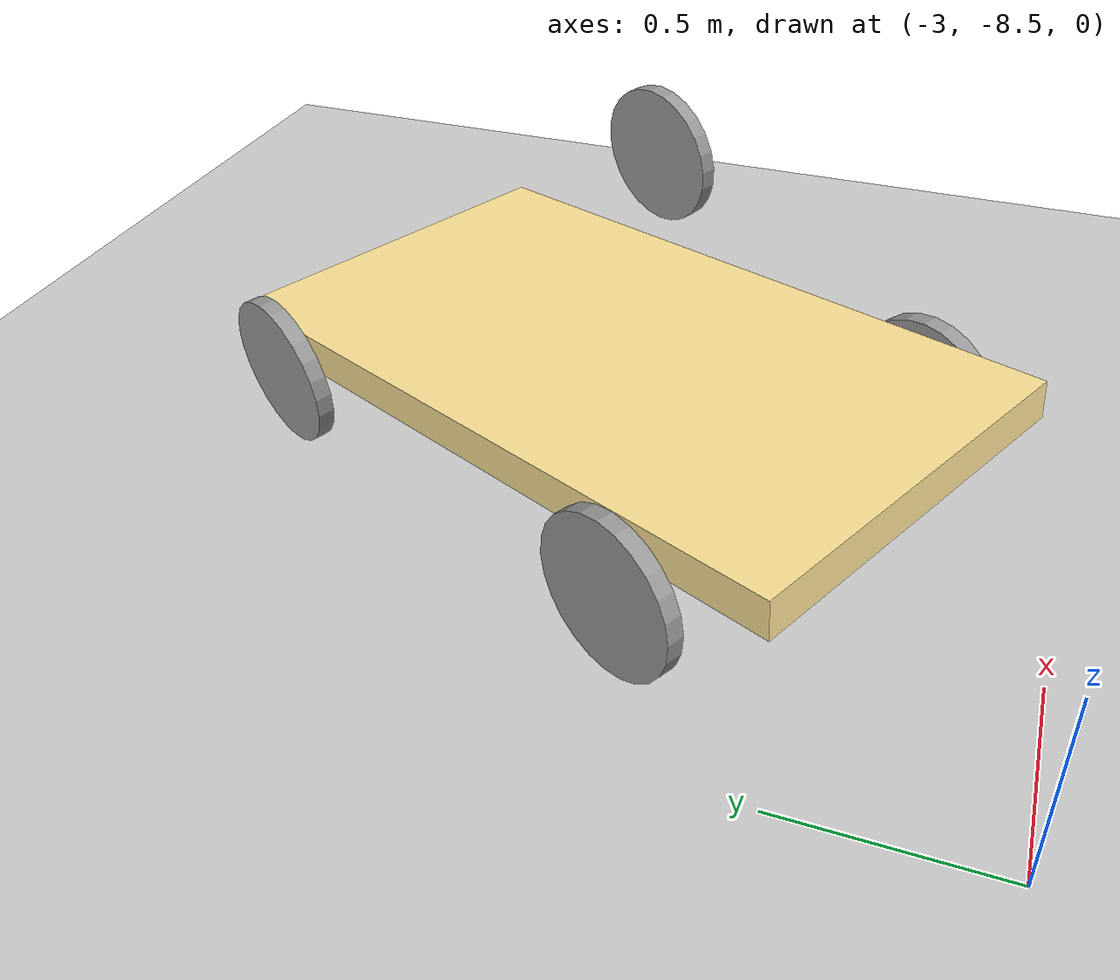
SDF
<sdf version="1.6">
 <world name="default">
  <model name="ground_plane">
   <static>1</static>
   <link name="link">
    <collision name="collision">
     <geometry><plane><normal>0 0 1</normal><size>100 100</size></plane></geometry>
     <surface><friction><ode><mu>100</mu><mu2>50</mu2></ode></friction></surface>
    </collision>
    <visual name="visual">
     <cast_shadows>0</cast_shadows>
     <geometry><plane><normal>0 0 1</normal><size>100 100</size></plane></geometry>
     <material>
      <script><uri>file://media/materials/scripts/gazebo.material</uri><name>Gazebo/Grey</name></script>
     </material>
    </visual>
   </link>
  </model>
  <model name="wheely">
   <link name="link_0">
    <pose>-0.050655 0.038805 -0.014544 1e-06 0.271798 0.057206</pose>
    <inertial>
     <mass>9.70976</mass>
     <inertia><ixx>0.817238</ixx><ixy>0</ixy><ixz>0</ixz><iyy>2.71066</iyy><iyz>0</iyz><izz>3.51172</izz></inertia>
    </inertial>
    <visual name="visual">
     <geometry><box><size>1.82757 1 0.1</size></box></geometry>
     <material>
      <lighting>1</lighting>
      <script><uri>file://media/materials/scripts/gazebo.material</uri><name>Gazebo/Grey</name></script>
      <ambient>1 0.9 0.6 1</ambient>
      <diffuse>1 0.9 0.6 1</diffuse>
      <specular>0.01 0.01 0.01 1</specular>
      <emissive>0 0 0 1</emissive>
      <shader type="vertex"><normal_map>__default__</normal_map></shader>
     </material>
    </visual>
    <collision name="collision">
     <geometry><box><size>1.82757 1 0.1</size></box></geometry>
     <surface>
      <friction>
       <ode><mu>1</mu><mu2>1</mu2><fdir1>0 0 0</fdir1><slip1>0</slip1><slip2>0</slip2></ode>
       <torsional>
        <coefficient>1</coefficient>
        <patch_radius>0</patch_radius>
        <surface_radius>0</surface_radius>
        <use_patch_radius>1</use_patch_radius>
        <ode><slip>0</slip></ode>
       </torsional>
      </friction>
      <bounce><restitution_coefficient>0</restitution_coefficient><threshold>1e+06</threshold></bounce>
      <contact>
       <collide_without_contact>0</collide_without_contact>
       <collide_without_contact_bitmask>1</collide_without_contact_bitmask>
       <collide_bitmask>1</collide_bitmask>
       <ode>
        <soft_cfm>0</soft_cfm>
        <soft_erp>0.2</soft_erp>
        <kp>1e+13</kp>
        <kd>1</kd>
        <max_vel>0.01</max_vel>
        <min_depth>0</min_depth>
       </ode>
       <bullet>
        <split_impulse>1</split_impulse>
        <split_impulse_penetration_threshold>-0.01</split_impulse_penetration_threshold>
        <soft_cfm>0</soft_cfm>
        <soft_erp>0.2</soft_erp>
        <kp>1e+13</kp>
        <kd>1</kd>
       </bullet>
      </contact>
     </surface>
    </collision>
   </link>
   <link name="link_1">
    <pose>-0.596107 -0.550019 -0 1.5707 -0 0</pose>
    <inertial>
     <mass>0.499601</mass>
     <inertia>
      <ixx>0.00509991</ixx>
      <ixy>0</ixy>
      <ixz>0</ixz>
      <iyy>0.00509991</iyy>
      <iyz>0</iyz>
      <izz>0.00999201</izz>
     </inertia>
    </inertial>
    <visual name="visual">
     <geometry><cylinder><radius>0.2</radius><length>0.049957</length></cylinder></geometry>
     <material>
      <lighting>1</lighting>
      <script><uri>file://media/materials/scripts/gazebo.material</uri><name>Gazebo/Grey</name></script>
      <ambient>0.5 0.5 0.5 1</ambient>
      <diffuse>0.5 0.5 0.5 1</diffuse>
      <specular>0.01 0.01 0.01 1</specular>
      <emissive>0 0 0 1</emissive>
      <shader type="vertex"><normal_map>__default__</normal_map></shader>
     </material>
    </visual>
    <collision name="collision">
     <geometry><cylinder><radius>0.2</radius><length>0.049957</length></cylinder></geometry>
     <surface>
      <friction>
       <ode><mu>1</mu><mu2>1</mu2><fdir1>0 0 0</fdir1><slip1>0</slip1><slip2>0</slip2></ode>
       <torsional>
        <coefficient>1</coefficient>
        <patch_radius>0</patch_radius>
        <surface_radius>0</surface_radius>
        <use_patch_radius>1</use_patch_radius>
        <ode><slip>0</slip></ode>
       </torsional>
      </friction>
      <bounce><restitution_coefficient>0</restitution_coefficient><threshold>1e+06</threshold></bounce>
      <contact>
       <collide_without_contact>0</collide_without_contact>
       <collide_without_contact_bitmask>1</collide_without_contact_bitmask>
       <collide_bitmask>1</collide_bitmask>
       <ode>
        <soft_cfm>0</soft_cfm>
        <soft_erp>0.2</soft_erp>
        <kp>1e+13</kp>
        <kd>1</kd>
        <max_vel>0.01</max_vel>
        <min_depth>0</min_depth>
       </ode>
       <bullet>
        <split_impulse>1</split_impulse>
        <split_impulse_penetration_threshold>-0.01</split_impulse_penetration_threshold>
        <soft_cfm>0</soft_cfm>
        <soft_erp>0.2</soft_erp>
        <kp>1e+13</kp>
        <kd>1</kd>
       </bullet>
      </contact>
     </surface>
    </collision>
   </link>
   <link name="link_1_clone">
    <pose>-0.61948 0.550019 0 1.5707 -0 0</pose>
    <inertial>
     <mass>0.43298</mass>
     <inertia>
      <ixx>0.00439744</ixx>
      <ixy>0</ixy>
      <ixz>0</ixz>
      <iyy>0.00439744</iyy>
      <iyz>0</iyz>
      <izz>0.00865959</izz>
     </inertia>
    </inertial>
    <visual name="visual">
     <geometry><cylinder><radius>0.2</radius><length>0.0432982</length></cylinder></geometry>
     <material>
      <lighting>1</lighting>
      <script><uri>file://media/materials/scripts/gazebo.material</uri><name>Gazebo/Grey</name></script>
      <ambient>0.5 0.5 0.5 1</ambient>
      <diffuse>0.5 0.5 0.5 1</diffuse>
      <specular>0.01 0.01 0.01 1</specular>
      <emissive>0 0 0 1</emissive>
      <shader type="vertex"><normal_map>__default__</normal_map></shader>
     </material>
    </visual>
    <collision name="collision">
     <geometry><cylinder><radius>0.2</radius><length>0.043298</length></cylinder></geometry>
     <surface>
      <friction>
       <ode><mu>1</mu><mu2>1</mu2><fdir1>0 0 0</fdir1><slip1>0</slip1><slip2>0</slip2></ode>
       <torsional>
        <coefficient>1</coefficient>
        <patch_radius>0</patch_radius>
        <surface_radius>0</surface_radius>
        <use_patch_radius>1</use_patch_radius>
        <ode><slip>0</slip></ode>
       </torsional>
      </friction>
      <bounce><restitution_coefficient>0</restitution_coefficient><threshold>1e+06</threshold></bounce>
      <contact>
       <collide_without_contact>0</collide_without_contact>
       <collide_without_contact_bitmask>1</collide_without_contact_bitmask>
       <collide_bitmask>1</collide_bitmask>
       <ode>
        <soft_cfm>0</soft_cfm>
        <soft_erp>0.2</soft_erp>
        <kp>1e+13</kp>
        <kd>1</kd>
        <max_vel>0.01</max_vel>
        <min_depth>0</min_depth>
       </ode>
       <bullet>
        <split_impulse>1</split_impulse>
        <split_impulse_penetration_threshold>-0.01</split_impulse_penetration_threshold>
        <soft_cfm>0</soft_cfm>
        <soft_erp>0.2</soft_erp>
        <kp>1e+13</kp>
        <kd>1</kd>
       </bullet>
      </contact>
     </surface>
    </collision>
   </link>
   <link name="link_1_clone_clone">
    <pose>0.460007 -0.573936 0.098437 1.5 -0 0</pose>
    <inertial>
     <mass>0.43298</mass>
     <inertia>
      <ixx>0.00439744</ixx>
      <ixy>0</ixy>
      <ixz>0</ixz>
      <iyy>0.00439744</iyy>
      <iyz>0</iyz>
      <izz>0.00865959</izz>
     </inertia>
    </inertial>
    <visual name="visual">
     <geometry><cylinder><radius>0.2</radius><length>0.0432982</length></cylinder></geometry>
     <material>
      <lighting>1</lighting>
      <script><uri>file://media/materials/scripts/gazebo.material</uri><name>Gazebo/Grey</name></script>
      <ambient>0.5 0.5 0.5 1</ambient>
      <diffuse>0.5 0.5 0.5 1</diffuse>
      <specular>0.01 0.01 0.01 1</specular>
      <emissive>0 0 0 1</emissive>
      <shader type="vertex"><normal_map>__default__</normal_map></shader>
     </material>
    </visual>
    <collision name="collision">
     <geometry><cylinder><radius>0.2</radius><length>0.043298</length></cylinder></geometry>
     <surface>
      <friction>
       <ode><mu>1</mu><mu2>1</mu2><fdir1>0 0 0</fdir1><slip1>0</slip1><slip2>0</slip2></ode>
       <torsional>
        <coefficient>1</coefficient>
        <patch_radius>0</patch_radius>
        <surface_radius>0</surface_radius>
        <use_patch_radius>1</use_patch_radius>
        <ode><slip>0</slip></ode>
       </torsional>
      </friction>
      <bounce><restitution_coefficient>0</restitution_coefficient><threshold>1e+06</threshold></bounce>
      <contact>
       <collide_without_contact>0</collide_without_contact>
       <collide_without_contact_bitmask>1</collide_without_contact_bitmask>
       <collide_bitmask>1</collide_bitmask>
       <ode>
        <soft_cfm>0</soft_cfm>
        <soft_erp>0.2</soft_erp>
        <kp>1e+13</kp>
        <kd>1</kd>
        <max_vel>0.01</max_vel>
        <min_depth>0</min_depth>
       </ode>
       <bullet>
        <split_impulse>1</split_impulse>
        <split_impulse_penetration_threshold>-0.01</split_impulse_penetration_threshold>
        <soft_cfm>0</soft_cfm>
        <soft_erp>0.2</soft_erp>
        <kp>1e+13</kp>
        <kd>1</kd>
       </bullet>
      </contact>
     </surface>
    </collision>
   </link>
   <link name="link_1_clone_clone_clone_0">
    <pose>0.552681 0.62579 -0.239322 1.5 -0 0</pose>
    <inertial>
     <mass>0.43298</mass>
     <inertia>
      <ixx>0.00439744</ixx>
      <ixy>0</ixy>
      <ixz>0</ixz>
      <iyy>0.00439744</iyy>
      <iyz>0</iyz>
      <izz>0.00865959</izz>
     </inertia>
    </inertial>
    <visual name="visual">
     <geometry><cylinder><radius>0.2</radius><length>0.0432982</length></cylinder></geometry>
     <material>
      <lighting>1</lighting>
      <script><uri>file://media/materials/scripts/gazebo.material</uri><name>Gazebo/Grey</name></script>
      <ambient>0.5 0.5 0.5 1</ambient>
      <diffuse>0.5 0.5 0.5 1</diffuse>
      <specular>0.01 0.01 0.01 1</specular>
      <emissive>0 0 0 1</emissive>
      <shader type="vertex"><normal_map>__default__</normal_map></shader>
     </material>
    </visual>
    <collision name="collision">
     <geometry><cylinder><radius>0.2</radius><length>0.043298</length></cylinder></geometry>
     <surface>
      <friction>
       <ode><mu>1</mu><mu2>1</mu2><fdir1>0 0 0</fdir1><slip1>0</slip1><slip2>0</slip2></ode>
       <torsional>
        <coefficient>1</coefficient>
        <patch_radius>0</patch_radius>
        <surface_radius>0</surface_radius>
        <use_patch_radius>1</use_patch_radius>
        <ode><slip>0</slip></ode>
       </torsional>
      </friction>
      <bounce><restitution_coefficient>0</restitution_coefficient><threshold>1e+06</threshold></bounce>
      <contact>
       <collide_without_contact>0</collide_without_contact>
       <collide_without_contact_bitmask>1</collide_without_contact_bitmask>
       <collide_bitmask>1</collide_bitmask>
       <ode>
        <soft_cfm>0</soft_cfm>
        <soft_erp>0.2</soft_erp>
        <kp>1e+13</kp>
        <kd>1</kd>
        <max_vel>0.01</max_vel>
        <min_depth>0</min_depth>
       </ode>
       <bullet>
        <split_impulse>1</split_impulse>
        <split_impulse_penetration_threshold>-0.01</split_impulse_penetration_threshold>
        <soft_cfm>0</soft_cfm>
        <soft_erp>0.2</soft_erp>
        <kp>1e+13</kp>
        <kd>1</kd>
       </bullet>
      </contact>
     </surface>
    </collision>
   </link>
   <joint name="link_0_JOINT_0_0" type="revolute">
    <parent>link_0</parent>
    <child>link_1_clone_clone_clone_0</child>
    <axis>
     <xyz>1 0 0</xyz>
     <use_parent_model_frame>0</use_parent_model_frame>
     <limit>
      <lower>-1.79769e+308</lower>
      <upper>1.79769e+308</upper>
      <effort>-1</effort>
      <velocity>-1</velocity>
     </limit>
     <dynamics>
      <spring_reference>0</spring_reference>
      <spring_stiffness>0</spring_stiffness>
      <damping>0</damping>
     </dynamics>
    </axis>
    <physics>
     <ode><limit><cfm>0</cfm><erp>0.2</erp></limit><suspension><cfm>0</cfm><erp>0.2</erp></suspension></ode>
    </physics>
   </joint>
   <joint name="link_0_JOINT_0" type="revolute">
    <parent>link_0</parent>
    <child>link_1</child>
    <axis>
     <xyz>0 0 1</xyz>
     <use_parent_model_frame>0</use_parent_model_frame>
     <limit>
      <lower>-1.79769e+308</lower>
      <upper>1.79769e+308</upper>
      <effort>-1</effort>
      <velocity>-1</velocity>
     </limit>
     <dynamics>
      <spring_reference>0</spring_reference>
      <spring_stiffness>0</spring_stiffness>
      <damping>0</damping>
      <friction>0</friction>
     </dynamics>
    </axis>
    <physics>
     <ode><limit><cfm>0</cfm><erp>0.2</erp></limit><suspension><cfm>0</cfm><erp>0.2</erp></suspension></ode>
    </physics>
   </joint>
   <joint name="link_0_JOINT_1_0" type="revolute">
    <parent>link_0</parent>
    <child>link_1_clone_clone</child>
    <axis>
     <xyz>1 0 0</xyz>
     <use_parent_model_frame>0</use_parent_model_frame>
     <limit>
      <lower>-1.79769e+308</lower>
      <upper>1.79769e+308</upper>
      <effort>-1</effort>
      <velocity>-1</velocity>
     </limit>
     <dynamics>
      <spring_reference>0</spring_reference>
      <spring_stiffness>0</spring_stiffness>
      <damping>0</damping>
     </dynamics>
    </axis>
    <physics>
     <ode><limit><cfm>0</cfm><erp>0.2</erp></limit><suspension><cfm>0</cfm><erp>0.2</erp></suspension></ode>
    </physics>
   </joint>
   <joint name="link_0_JOINT_1" type="revolute">
    <parent>link_0</parent>
    <child>link_1_clone</child>
    <axis>
     <xyz>0 0 1</xyz>
     <use_parent_model_frame>0</use_parent_model_frame>
     <limit>
      <lower>-1.79769e+308</lower>
      <upper>1.79769e+308</upper>
      <effort>-1</effort>
      <velocity>-1</velocity>
     </limit>
     <dynamics>
      <spring_reference>0</spring_reference>
      <spring_stiffness>0</spring_stiffness>
      <damping>0</damping>
      <friction>0</friction>
     </dynamics>
    </axis>
    <physics>
     <ode><limit><cfm>0</cfm><erp>0.2</erp></limit><suspension><cfm>0</cfm><erp>0.2</erp></suspension></ode>
    </physics>
   </joint>
   <static>0</static>
   <pose>-1.95016 -7.34255 0.321475 0.00433 -0.201064 1.05743</pose>
  </model>
  <model name="asphalt_plane">
   <static>1</static>
   <link name="link">
    <collision name="collision"><geometry><box><size>20 20 0.1</size></box></geometry></collision>
    <visual name="visual">
     <cast_shadows>0</cast_shadows>
     <geometry><box><size>20 20 0.1</size></box></geometry>
     <material>
      <script>
       <uri>model://asphalt_plane/materials/scripts</uri>
       <uri>model://asphalt_plane/materials/textures</uri>
       <name>vrc/asphalt</name>
      </script>
     </material>
    </visual>
   </link>
   <pose>-0.343897 -25.6982 0 0 -0 0</pose>
  </model>
 </world>
</sdf>
